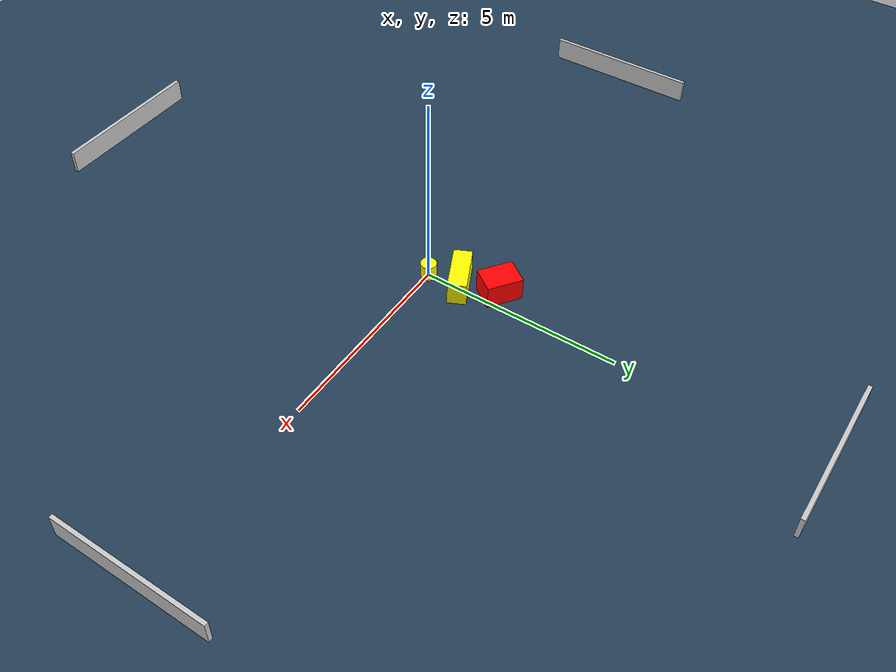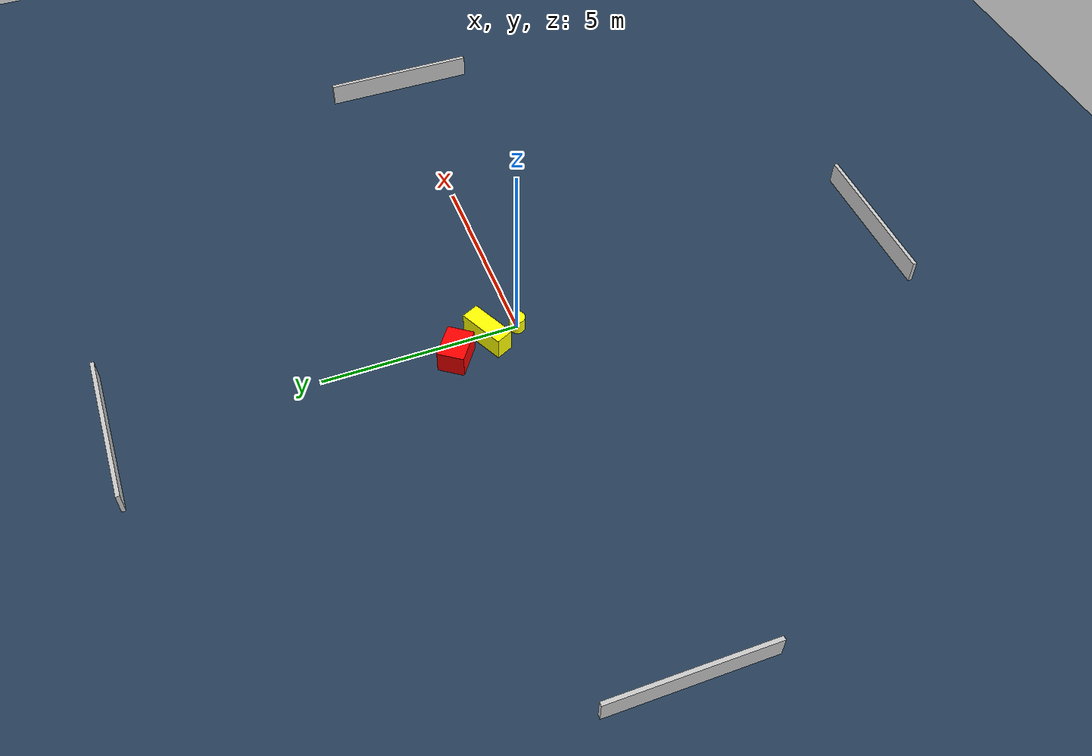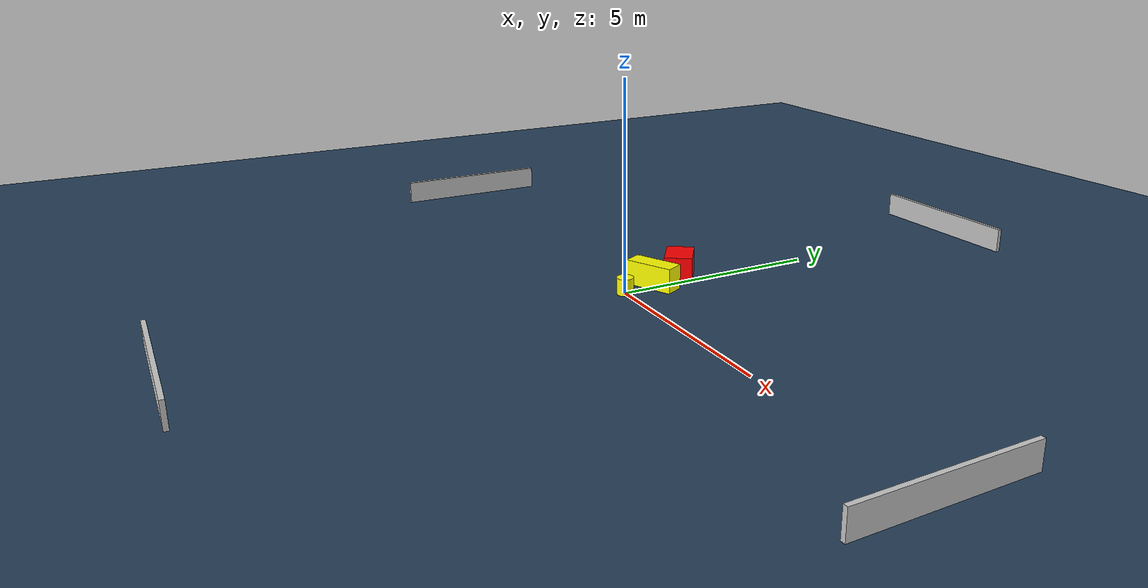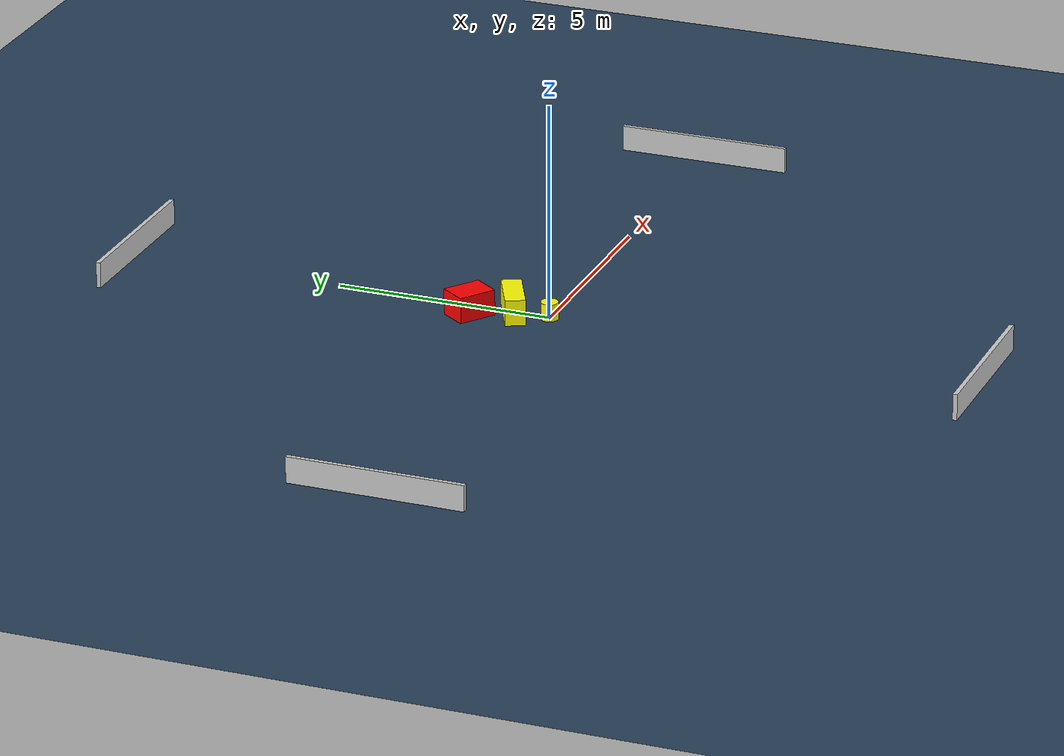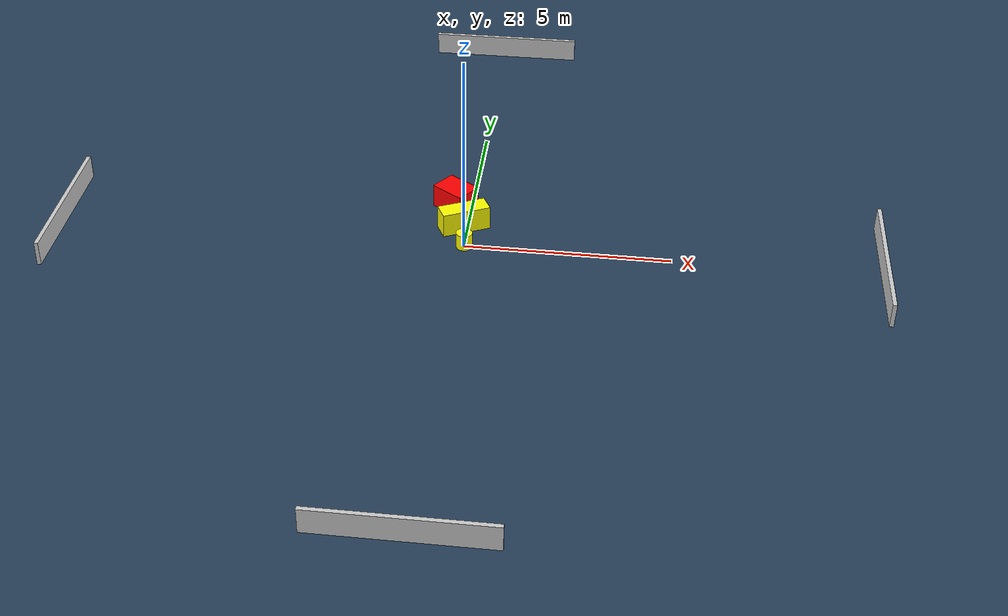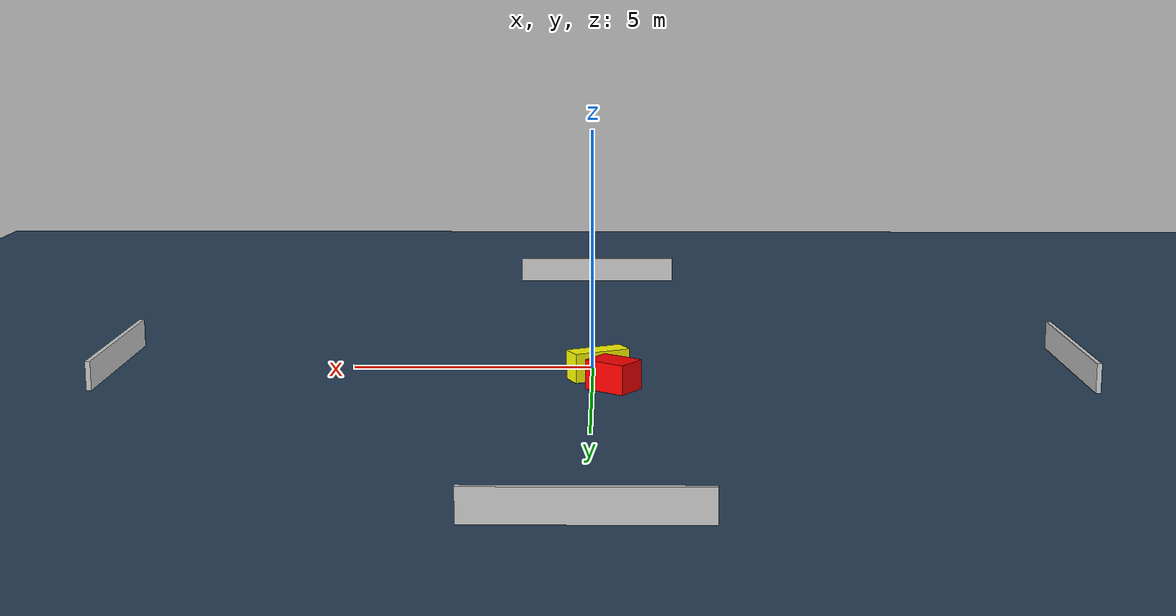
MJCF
<?xml version="1.0" ?>
<mujoco model="generated_environment">
  <option timestep="0.01" integrator="RK4" cone="elliptic"/>
  <default>
    <geom density="1"/>
  </default>
  <asset>
    <texture builtin="gradient" height="3072" name="skybox" rgb1="0.3 0.5 0.7" rgb2="0 0 0" type="skybox" width="512"/>
    <texture builtin="checker" height="300" name="groundplane" rgb1="0.2 0.3 0.4" rgb2="0.1 0.2 0.3" type="2d" width="300"/>
    <material name="groundplane" reflectance="0.2" texrepeat="5 5" texture="groundplane"/>
  </asset>
  <worldbody>
    <light dir="0 0 -1" directional="true" pos="0 0 1.5"/>
    <geom condim="3" friction="0.5 0.005 0.001" material="groundplane" name="floor" pos="0 0 0" size="0 0 0.05" type="plane"/>
    <body name="walls">
      <geom name="wall_1" condim="4" pos="-10.0 0.0 0.3" rgba="0.800000011920929 0.800000011920929 0.800000011920929 1.0" size="0.05 2.0 0.3" type="box"/>
      <geom name="wall_2" condim="4" pos="10.0 0.0 0.3" rgba="0.800000011920929 0.800000011920929 0.800000011920929 1.0" size="0.05 2.0 0.3" type="box"/>
      <geom name="wall_3" condim="4" pos="0.0 -10.0 0.3" rgba="0.800000011920929 0.800000011920929 0.800000011920929 1.0" size="2.0 0.05 0.3" type="box"/>
      <geom name="wall_4" condim="4" pos="0.0 10.0 0.3" rgba="0.800000011920929 0.800000011920929 0.800000011920929 1.0" size="2.0 0.05 0.3" type="box"/>
    </body>
    <body name="robot">
      <joint name="joint_x" type="slide" pos="0 0 0" axis="1 0 0"/>
      <joint name="joint_y" type="slide" pos="0 0 0" axis="0 1 0"/>
      <geom name="robot" type="cylinder" pos="0.0 0.0 0.2" size="0.2 0.2 0.0" mass="5.0" friction="1.0 0.005 0.0001" condim="4" rgba="1.0 1.0 0.0 1.0"/>
    </body>
    <body name="obstacle_1_movable">
      <geom name="obstacle_1_movable" condim="4" pos="-0.11167527864961604 0.8206898352812684 0.3" euler="0 0 115.67834719598603" friction="0.0 0.005 0.001" rgba="1.0 1.0 0.0 1.0" size="0.23063206824262067 0.6023272466227585 0.3" type="box" mass="0.1"/>
      <joint type="free"/>
    </body>
    <body name="obstacle_2_static">
      <geom name="obstacle_2_static" condim="4" pos="-0.4258954636298329 1.733008811838853 0.3" euler="0 0 234.55291024378394" friction="0.0 0.005 0.001" rgba="1.0 0.0 0.0 1.0" size="0.3368177147903325 0.4495646706666764 0.3" type="box"/>
    </body>
  </worldbody>
  <actuator>
    <motor name="actuator_x" joint="joint_x" gear="1" ctrlrange="-1 1"/>
    <motor name="actuator_y" joint="joint_y" gear="1" ctrlrange="-1 1"/>
  </actuator>
</mujoco>
